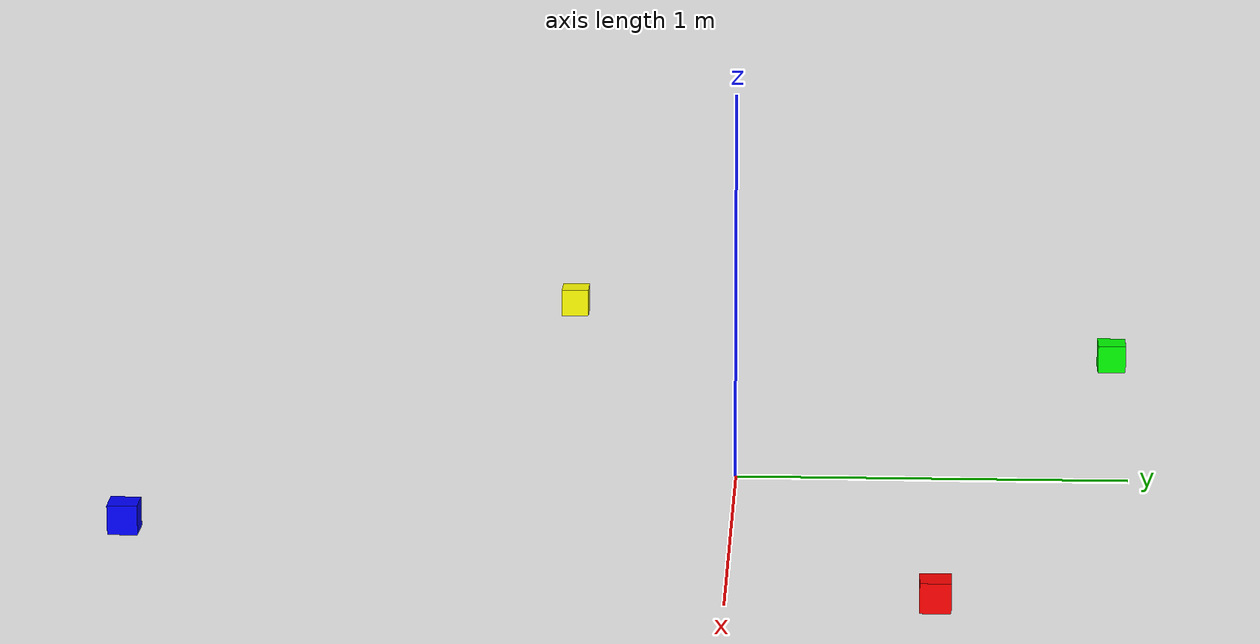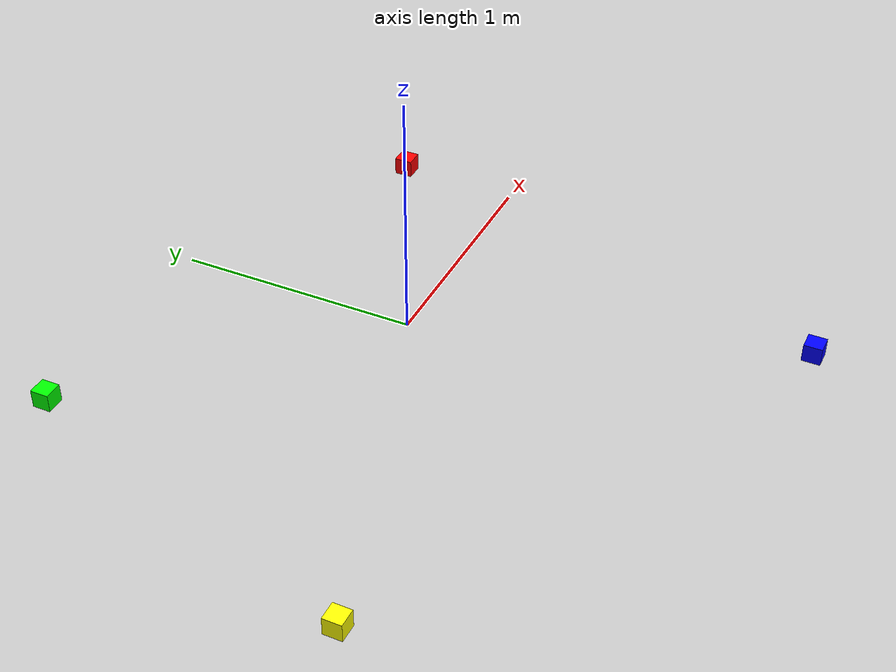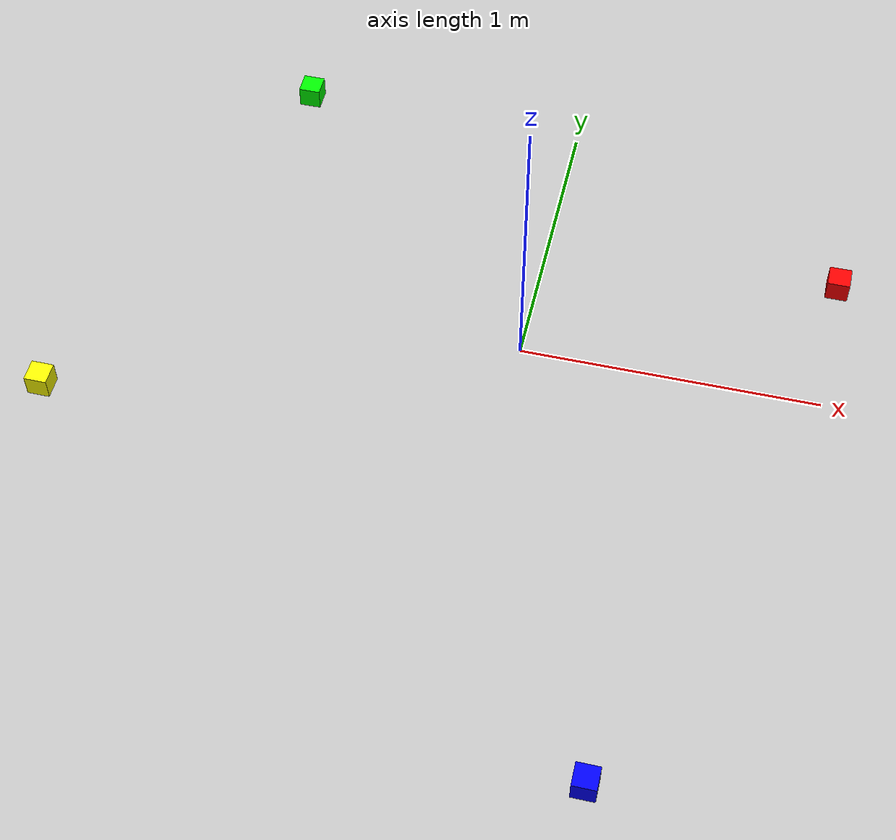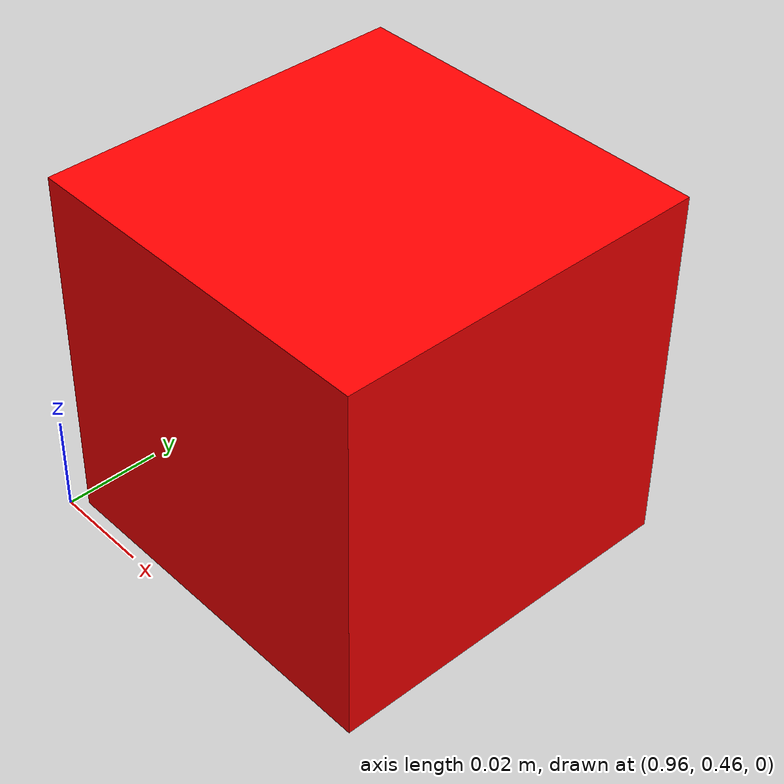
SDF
<?xml version='1.0' encoding='ASCII'?>
<sdf version='1.8'>
  <world name='turtlebot4_blocks_world'>
    <physics type="ode">
      <max_step_size>0.003</max_step_size>
      <real_time_factor>1.0</real_time_factor>
    </physics>
    <plugin name="gz::sim::systems::Physics" filename="gz-sim-physics-system" />
    <plugin name="gz::sim::systems::UserCommands" filename="gz-sim-user-commands-system" />
    <plugin name="gz::sim::systems::SceneBroadcaster" filename="gz-sim-scene-broadcaster-system" />
    <plugin name="gz::sim::systems::Contact" filename="gz-sim-contact-system" />

    <scene>
      <ambient>1 1 1 1</ambient>
      <background>0.3 0.7 0.9 1</background>
      <shadows>0</shadows>
      <grid>false</grid>
    </scene>

    <model name='ground_plane'>
      <static>true</static>
      <link name='link'>
        <collision name='collision'>
          <geometry>
            <plane>
              <normal>0.0 0.0 1</normal>
              <size>1 1</size>
            </plane>
          </geometry>
        </collision>
      </link>
      <pose>0 0 0 0 0 0</pose>
    </model>

    <!-- Block 1 - Red -->
    <model name="block_1">
      <pose>1.0 0.5 0.0375 0 0 0</pose>
      <link name="link">
        <collision name="collision">
          <geometry>
            <box>
              <size>0.075 0.075 0.075</size>
            </box>
          </geometry>
          <surface>
            <friction>
              <ode>
                <mu>0.5</mu>
                <mu2>0.5</mu2>
              </ode>
            </friction>
          </surface>
        </collision>
        <visual name="visual">
          <geometry>
            <box>
              <size>0.075 0.075 0.075</size>
            </box>
          </geometry>
          <material>
            <ambient>1 0 0 1</ambient>
            <diffuse>1 0 0 1</diffuse>
            <specular>0.1 0.1 0.1 1</specular>
          </material>
        </visual>
        <inertial>
          <mass>1.0</mass>
          <inertia>
            <ixx>0.0417</ixx>
            <ixy>0</ixy>
            <ixz>0</ixz>
            <iyy>0.0417</iyy>
            <iyz>0</iyz>
            <izz>0.0417</izz>
          </inertia>
        </inertial>
      </link>
    </model>

    <!-- Block 2 - Green -->
    <model name="block_2">
      <pose>-1.0 1.0 0.0375 0 0 0</pose>
      <link name="link">
        <collision name="collision">
          <geometry>
            <box>
              <size>0.075 0.075 0.075</size>
            </box>
          </geometry>
          <surface>
            <friction>
              <ode>
                <mu>0.5</mu>
                <mu2>0.5</mu2>
              </ode>
            </friction>
          </surface>
        </collision>
        <visual name="visual">
          <geometry>
            <box>
              <size>0.075 0.075 0.075</size>
            </box>
          </geometry>
          <material>
            <ambient>0 1 0 1</ambient>
            <diffuse>0 1 0 1</diffuse>
            <specular>0.1 0.1 0.1 1</specular>
          </material>
        </visual>
        <inertial>
          <mass>1.0</mass>
          <inertia>
            <ixx>0.0417</ixx>
            <ixy>0</ixy>
            <ixz>0</ixz>
            <iyy>0.0417</iyy>
            <iyz>0</iyz>
            <izz>0.0417</izz>
          </inertia>
        </inertial>
      </link>
    </model>

    <!-- Block 3 - Blue -->
    <model name="block_3">
      <pose>0.5 -1.5 0.0375 0 0 0</pose>
      <link name="link">
        <collision name="collision">
          <geometry>
            <box>
              <size>0.075 0.075 0.075</size>
            </box>
          </geometry>
          <surface>
            <friction>
              <ode>
                <mu>0.5</mu>
                <mu2>0.5</mu2>
              </ode>
            </friction>
          </surface>
        </collision>
        <visual name="visual">
          <geometry>
            <box>
              <size>0.075 0.075 0.075</size>
            </box>
          </geometry>
          <material>
            <ambient>0 0 1 1</ambient>
            <diffuse>0 0 1 1</diffuse>
            <specular>0.1 0.1 0.1 1</specular>
          </material>
        </visual>
        <inertial>
          <mass>1.0</mass>
          <inertia>
            <ixx>0.0417</ixx>
            <ixy>0</ixy>
            <ixz>0</ixz>
            <iyy>0.0417</iyy>
            <iyz>0</iyz>
            <izz>0.0417</izz>
          </inertia>
        </inertial>
      </link>
    </model>

    <!-- Block 4 - Yellow -->
    <model name="block_4">
      <pose>-1.5 -0.5 0.0375 0 0 0</pose>
      <link name="link">
        <collision name="collision">
          <geometry>
            <box>
              <size>0.075 0.075 0.075</size>
            </box>
          </geometry>
          <surface>
            <friction>
              <ode>
                <mu>0.5</mu>
                <mu2>0.5</mu2>
              </ode>
            </friction>
          </surface>
        </collision>
        <visual name="visual">
          <geometry>
            <box>
              <size>0.075 0.075 0.075</size>
            </box>
          </geometry>
          <material>
            <ambient>1 1 0 1</ambient>
            <diffuse>1 1 0 1</diffuse>
            <specular>0.1 0.1 0.1 1</specular>
          </material>
        </visual>
        <inertial>
          <mass>1.0</mass>
          <inertia>
            <ixx>0.0417</ixx>
            <ixy>0</ixy>
            <ixz>0</ixz>
            <iyy>0.0417</iyy>
            <iyz>0</iyz>
            <izz>0.0417</izz>
          </inertia>
        </inertial>
      </link>
    </model>

  </world>
</sdf>
